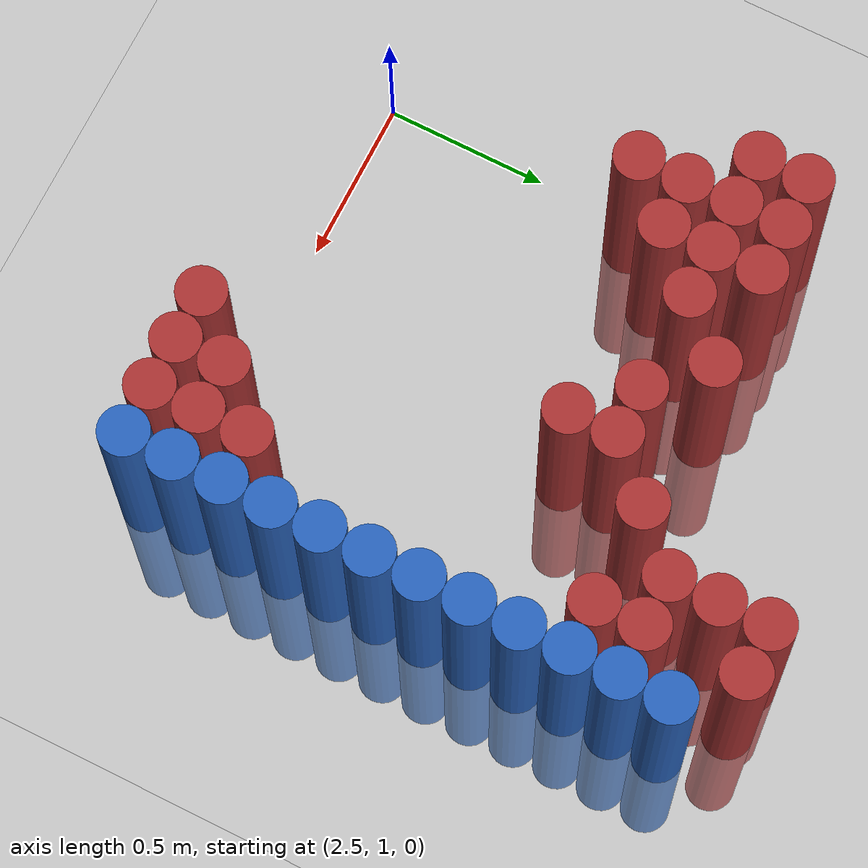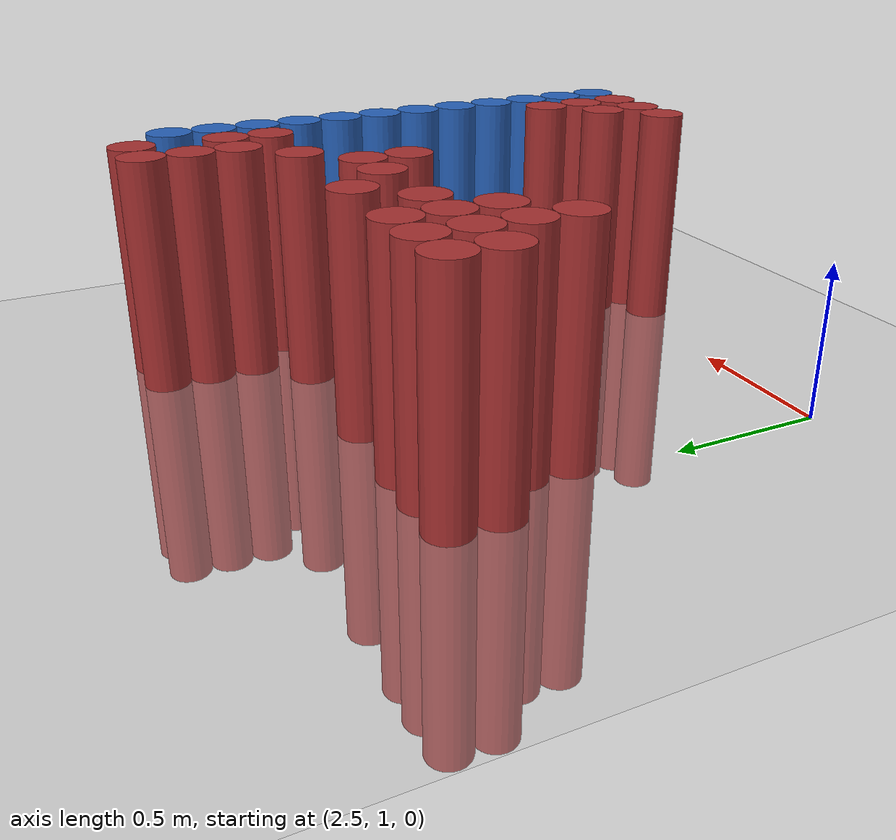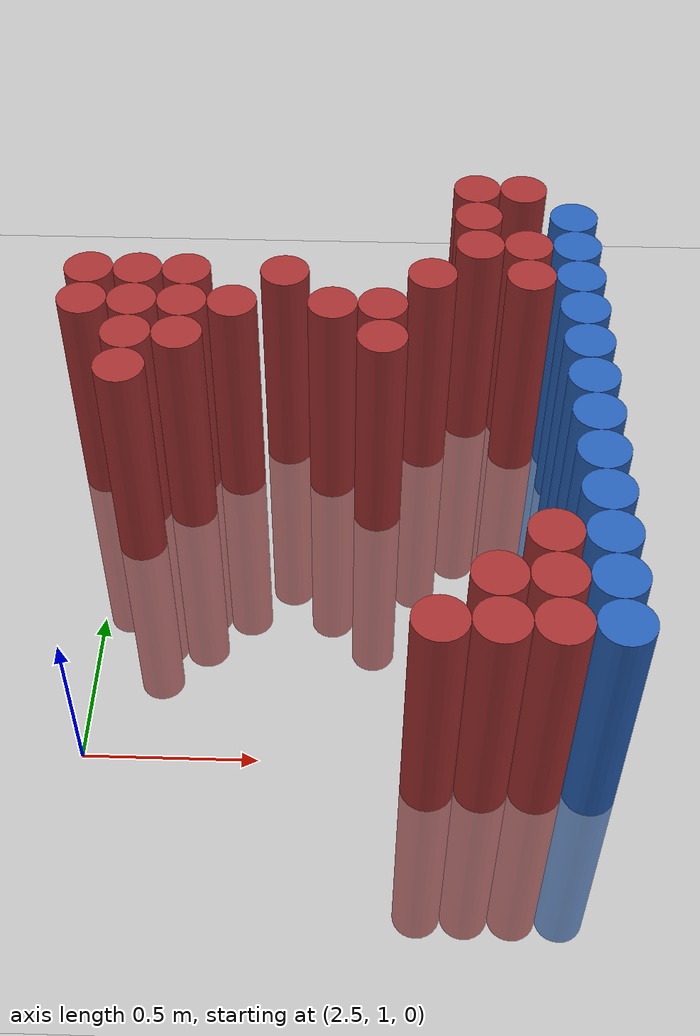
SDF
<sdf version="1.6">
 <world name="default">
  <model name="ground_plane">
   <static>1</static>
   <link name="link">
    <collision name="collision">
     <geometry><plane><normal>0 0 1</normal><size>100 100</size></plane></geometry>
     <surface><friction><ode><mu>100</mu><mu2>50</mu2></ode></friction></surface>
    </collision>
    <visual name="visual">
     <cast_shadows>0</cast_shadows>
     <geometry><plane><normal>0 0 1</normal><size>100 100</size></plane></geometry>
     <material>
      <script><uri>file://media/materials/scripts/gazebo.material</uri><name>Gazebo/Grey</name></script>
     </material>
    </visual>
   </link>
  </model>
  <model name="unit_cylinder_126">
   <static>1</static>
   <pose>3.925000 0.925000 0.000000 0.000000 0.000000 0.000000</pose>
   <link name="link">
    <inertial>
     <mass>1</mass>
     <inertia><ixx>0.145833</ixx><ixy>0</ixy><ixz>0</ixz><iyy>0.145833</iyy><iyz>0</iyz><izz>0.125</izz></inertia>
    </inertial>
    <collision name="collision">
     <geometry><cylinder><radius>0.075000</radius><length>1.5</length></cylinder></geometry>
    </collision>
    <visual name="visual">
     <geometry><cylinder><radius>0.075000</radius><length>1.5</length></cylinder></geometry>
     <material>
      <ambient>0.152000 0.379000 0.720000 1</ambient>
      <diffuse>0.152000 0.379000 0.720000 1</diffuse>
     </material>
     <material>
      <script><name>Gazebo/Grey</name><uri>file://media/materials/scripts/gazebo.material</uri></script>
     </material>
    </visual>
   </link>
  </model>
  <model name="unit_cylinder_128">
   <static>1</static>
   <pose>3.925000 1.075000 0.000000 0.000000 0.000000 0.000000</pose>
   <link name="link">
    <inertial>
     <mass>1</mass>
     <inertia><ixx>0.145833</ixx><ixy>0</ixy><ixz>0</ixz><iyy>0.145833</iyy><iyz>0</iyz><izz>0.125</izz></inertia>
    </inertial>
    <collision name="collision">
     <geometry><cylinder><radius>0.075000</radius><length>1.5</length></cylinder></geometry>
    </collision>
    <visual name="visual">
     <geometry><cylinder><radius>0.075000</radius><length>1.5</length></cylinder></geometry>
     <material>
      <ambient>0.152000 0.379000 0.720000 1</ambient>
      <diffuse>0.152000 0.379000 0.720000 1</diffuse>
     </material>
     <material>
      <script><name>Gazebo/Grey</name><uri>file://media/materials/scripts/gazebo.material</uri></script>
     </material>
    </visual>
   </link>
  </model>
  <model name="unit_cylinder_130">
   <static>1</static>
   <pose>3.925000 1.225000 0.000000 0.000000 0.000000 0.000000</pose>
   <link name="link">
    <inertial>
     <mass>1</mass>
     <inertia><ixx>0.145833</ixx><ixy>0</ixy><ixz>0</ixz><iyy>0.145833</iyy><iyz>0</iyz><izz>0.125</izz></inertia>
    </inertial>
    <collision name="collision">
     <geometry><cylinder><radius>0.075000</radius><length>1.5</length></cylinder></geometry>
    </collision>
    <visual name="visual">
     <geometry><cylinder><radius>0.075000</radius><length>1.5</length></cylinder></geometry>
     <material>
      <ambient>0.152000 0.379000 0.720000 1</ambient>
      <diffuse>0.152000 0.379000 0.720000 1</diffuse>
     </material>
     <material>
      <script><name>Gazebo/Grey</name><uri>file://media/materials/scripts/gazebo.material</uri></script>
     </material>
    </visual>
   </link>
  </model>
  <model name="unit_cylinder_132">
   <static>1</static>
   <pose>3.925000 1.375000 0.000000 0.000000 0.000000 0.000000</pose>
   <link name="link">
    <inertial>
     <mass>1</mass>
     <inertia><ixx>0.145833</ixx><ixy>0</ixy><ixz>0</ixz><iyy>0.145833</iyy><iyz>0</iyz><izz>0.125</izz></inertia>
    </inertial>
    <collision name="collision">
     <geometry><cylinder><radius>0.075000</radius><length>1.5</length></cylinder></geometry>
    </collision>
    <visual name="visual">
     <geometry><cylinder><radius>0.075000</radius><length>1.5</length></cylinder></geometry>
     <material>
      <ambient>0.152000 0.379000 0.720000 1</ambient>
      <diffuse>0.152000 0.379000 0.720000 1</diffuse>
     </material>
     <material>
      <script><name>Gazebo/Grey</name><uri>file://media/materials/scripts/gazebo.material</uri></script>
     </material>
    </visual>
   </link>
  </model>
  <model name="unit_cylinder_134">
   <static>1</static>
   <pose>3.925000 1.525000 0.000000 0.000000 0.000000 0.000000</pose>
   <link name="link">
    <inertial>
     <mass>1</mass>
     <inertia><ixx>0.145833</ixx><ixy>0</ixy><ixz>0</ixz><iyy>0.145833</iyy><iyz>0</iyz><izz>0.125</izz></inertia>
    </inertial>
    <collision name="collision">
     <geometry><cylinder><radius>0.075000</radius><length>1.5</length></cylinder></geometry>
    </collision>
    <visual name="visual">
     <geometry><cylinder><radius>0.075000</radius><length>1.5</length></cylinder></geometry>
     <material>
      <ambient>0.152000 0.379000 0.720000 1</ambient>
      <diffuse>0.152000 0.379000 0.720000 1</diffuse>
     </material>
     <material>
      <script><name>Gazebo/Grey</name><uri>file://media/materials/scripts/gazebo.material</uri></script>
     </material>
    </visual>
   </link>
  </model>
  <model name="unit_cylinder_136">
   <static>1</static>
   <pose>3.925000 1.675000 0.000000 0.000000 0.000000 0.000000</pose>
   <link name="link">
    <inertial>
     <mass>1</mass>
     <inertia><ixx>0.145833</ixx><ixy>0</ixy><ixz>0</ixz><iyy>0.145833</iyy><iyz>0</iyz><izz>0.125</izz></inertia>
    </inertial>
    <collision name="collision">
     <geometry><cylinder><radius>0.075000</radius><length>1.5</length></cylinder></geometry>
    </collision>
    <visual name="visual">
     <geometry><cylinder><radius>0.075000</radius><length>1.5</length></cylinder></geometry>
     <material>
      <ambient>0.152000 0.379000 0.720000 1</ambient>
      <diffuse>0.152000 0.379000 0.720000 1</diffuse>
     </material>
     <material>
      <script><name>Gazebo/Grey</name><uri>file://media/materials/scripts/gazebo.material</uri></script>
     </material>
    </visual>
   </link>
  </model>
  <model name="unit_cylinder_138">
   <static>1</static>
   <pose>3.925000 1.825000 0.000000 0.000000 0.000000 0.000000</pose>
   <link name="link">
    <inertial>
     <mass>1</mass>
     <inertia><ixx>0.145833</ixx><ixy>0</ixy><ixz>0</ixz><iyy>0.145833</iyy><iyz>0</iyz><izz>0.125</izz></inertia>
    </inertial>
    <collision name="collision">
     <geometry><cylinder><radius>0.075000</radius><length>1.5</length></cylinder></geometry>
    </collision>
    <visual name="visual">
     <geometry><cylinder><radius>0.075000</radius><length>1.5</length></cylinder></geometry>
     <material>
      <ambient>0.152000 0.379000 0.720000 1</ambient>
      <diffuse>0.152000 0.379000 0.720000 1</diffuse>
     </material>
     <material>
      <script><name>Gazebo/Grey</name><uri>file://media/materials/scripts/gazebo.material</uri></script>
     </material>
    </visual>
   </link>
  </model>
  <model name="unit_cylinder_140">
   <static>1</static>
   <pose>3.925000 1.975000 0.000000 0.000000 0.000000 0.000000</pose>
   <link name="link">
    <inertial>
     <mass>1</mass>
     <inertia><ixx>0.145833</ixx><ixy>0</ixy><ixz>0</ixz><iyy>0.145833</iyy><iyz>0</iyz><izz>0.125</izz></inertia>
    </inertial>
    <collision name="collision">
     <geometry><cylinder><radius>0.075000</radius><length>1.5</length></cylinder></geometry>
    </collision>
    <visual name="visual">
     <geometry><cylinder><radius>0.075000</radius><length>1.5</length></cylinder></geometry>
     <material>
      <ambient>0.152000 0.379000 0.720000 1</ambient>
      <diffuse>0.152000 0.379000 0.720000 1</diffuse>
     </material>
     <material>
      <script><name>Gazebo/Grey</name><uri>file://media/materials/scripts/gazebo.material</uri></script>
     </material>
    </visual>
   </link>
  </model>
  <model name="unit_cylinder_142">
   <static>1</static>
   <pose>3.925000 2.125000 0.000000 0.000000 0.000000 0.000000</pose>
   <link name="link">
    <inertial>
     <mass>1</mass>
     <inertia><ixx>0.145833</ixx><ixy>0</ixy><ixz>0</ixz><iyy>0.145833</iyy><iyz>0</iyz><izz>0.125</izz></inertia>
    </inertial>
    <collision name="collision">
     <geometry><cylinder><radius>0.075000</radius><length>1.5</length></cylinder></geometry>
    </collision>
    <visual name="visual">
     <geometry><cylinder><radius>0.075000</radius><length>1.5</length></cylinder></geometry>
     <material>
      <ambient>0.152000 0.379000 0.720000 1</ambient>
      <diffuse>0.152000 0.379000 0.720000 1</diffuse>
     </material>
     <material>
      <script><name>Gazebo/Grey</name><uri>file://media/materials/scripts/gazebo.material</uri></script>
     </material>
    </visual>
   </link>
  </model>
  <model name="unit_cylinder_144">
   <static>1</static>
   <pose>3.925000 2.275000 0.000000 0.000000 0.000000 0.000000</pose>
   <link name="link">
    <inertial>
     <mass>1</mass>
     <inertia><ixx>0.145833</ixx><ixy>0</ixy><ixz>0</ixz><iyy>0.145833</iyy><iyz>0</iyz><izz>0.125</izz></inertia>
    </inertial>
    <collision name="collision">
     <geometry><cylinder><radius>0.075000</radius><length>1.5</length></cylinder></geometry>
    </collision>
    <visual name="visual">
     <geometry><cylinder><radius>0.075000</radius><length>1.5</length></cylinder></geometry>
     <material>
      <ambient>0.152000 0.379000 0.720000 1</ambient>
      <diffuse>0.152000 0.379000 0.720000 1</diffuse>
     </material>
     <material>
      <script><name>Gazebo/Grey</name><uri>file://media/materials/scripts/gazebo.material</uri></script>
     </material>
    </visual>
   </link>
  </model>
  <model name="unit_cylinder_146">
   <static>1</static>
   <pose>3.925000 2.425000 0.000000 0.000000 0.000000 0.000000</pose>
   <link name="link">
    <inertial>
     <mass>1</mass>
     <inertia><ixx>0.145833</ixx><ixy>0</ixy><ixz>0</ixz><iyy>0.145833</iyy><iyz>0</iyz><izz>0.125</izz></inertia>
    </inertial>
    <collision name="collision">
     <geometry><cylinder><radius>0.075000</radius><length>1.5</length></cylinder></geometry>
    </collision>
    <visual name="visual">
     <geometry><cylinder><radius>0.075000</radius><length>1.5</length></cylinder></geometry>
     <material>
      <ambient>0.152000 0.379000 0.720000 1</ambient>
      <diffuse>0.152000 0.379000 0.720000 1</diffuse>
     </material>
     <material>
      <script><name>Gazebo/Grey</name><uri>file://media/materials/scripts/gazebo.material</uri></script>
     </material>
    </visual>
   </link>
  </model>
  <model name="unit_cylinder_148">
   <static>1</static>
   <pose>3.925000 2.575000 0.000000 0.000000 0.000000 0.000000</pose>
   <link name="link">
    <inertial>
     <mass>1</mass>
     <inertia><ixx>0.145833</ixx><ixy>0</ixy><ixz>0</ixz><iyy>0.145833</iyy><iyz>0</iyz><izz>0.125</izz></inertia>
    </inertial>
    <collision name="collision">
     <geometry><cylinder><radius>0.075000</radius><length>1.5</length></cylinder></geometry>
    </collision>
    <visual name="visual">
     <geometry><cylinder><radius>0.075000</radius><length>1.5</length></cylinder></geometry>
     <material>
      <ambient>0.152000 0.379000 0.720000 1</ambient>
      <diffuse>0.152000 0.379000 0.720000 1</diffuse>
     </material>
     <material>
      <script><name>Gazebo/Grey</name><uri>file://media/materials/scripts/gazebo.material</uri></script>
     </material>
    </visual>
   </link>
  </model>
  <model name="unit_cylinder_390">
   <static>1</static>
   <pose>2.425000 2.125000 0.000000 0.000000 0.000000 0.000000</pose>
   <link name="link">
    <inertial>
     <mass>1</mass>
     <inertia><ixx>0.145833</ixx><ixy>0</ixy><ixz>0</ixz><iyy>0.145833</iyy><iyz>0</iyz><izz>0.125</izz></inertia>
    </inertial>
    <collision name="collision">
     <geometry><cylinder><radius>0.075000</radius><length>1.5</length></cylinder></geometry>
    </collision>
    <visual name="visual">
     <geometry><cylinder><radius>0.075000</radius><length>1.5</length></cylinder></geometry>
     <material>
      <ambient>0.648000 0.192000 0.192000 1</ambient>
      <diffuse>0.648000 0.192000 0.192000 1</diffuse>
     </material>
     <material>
      <script><name>Gazebo/Grey</name><uri>file://media/materials/scripts/gazebo.material</uri></script>
     </material>
    </visual>
   </link>
  </model>
  <model name="unit_cylinder_391">
   <static>1</static>
   <pose>2.425000 2.275000 0.000000 0.000000 0.000000 0.000000</pose>
   <link name="link">
    <inertial>
     <mass>1</mass>
     <inertia><ixx>0.145833</ixx><ixy>0</ixy><ixz>0</ixz><iyy>0.145833</iyy><iyz>0</iyz><izz>0.125</izz></inertia>
    </inertial>
    <collision name="collision">
     <geometry><cylinder><radius>0.075000</radius><length>1.5</length></cylinder></geometry>
    </collision>
    <visual name="visual">
     <geometry><cylinder><radius>0.075000</radius><length>1.5</length></cylinder></geometry>
     <material>
      <ambient>0.648000 0.192000 0.192000 1</ambient>
      <diffuse>0.648000 0.192000 0.192000 1</diffuse>
     </material>
     <material>
      <script><name>Gazebo/Grey</name><uri>file://media/materials/scripts/gazebo.material</uri></script>
     </material>
    </visual>
   </link>
  </model>
  <model name="unit_cylinder_395">
   <static>1</static>
   <pose>2.575000 1.825000 0.000000 0.000000 0.000000 0.000000</pose>
   <link name="link">
    <inertial>
     <mass>1</mass>
     <inertia><ixx>0.145833</ixx><ixy>0</ixy><ixz>0</ixz><iyy>0.145833</iyy><iyz>0</iyz><izz>0.125</izz></inertia>
    </inertial>
    <collision name="collision">
     <geometry><cylinder><radius>0.075000</radius><length>1.5</length></cylinder></geometry>
    </collision>
    <visual name="visual">
     <geometry><cylinder><radius>0.075000</radius><length>1.5</length></cylinder></geometry>
     <material>
      <ambient>0.648000 0.192000 0.192000 1</ambient>
      <diffuse>0.648000 0.192000 0.192000 1</diffuse>
     </material>
     <material>
      <script><name>Gazebo/Grey</name><uri>file://media/materials/scripts/gazebo.material</uri></script>
     </material>
    </visual>
   </link>
  </model>
  <model name="unit_cylinder_396">
   <static>1</static>
   <pose>2.575000 1.975000 0.000000 0.000000 0.000000 0.000000</pose>
   <link name="link">
    <inertial>
     <mass>1</mass>
     <inertia><ixx>0.145833</ixx><ixy>0</ixy><ixz>0</ixz><iyy>0.145833</iyy><iyz>0</iyz><izz>0.125</izz></inertia>
    </inertial>
    <collision name="collision">
     <geometry><cylinder><radius>0.075000</radius><length>1.5</length></cylinder></geometry>
    </collision>
    <visual name="visual">
     <geometry><cylinder><radius>0.075000</radius><length>1.5</length></cylinder></geometry>
     <material>
      <ambient>0.648000 0.192000 0.192000 1</ambient>
      <diffuse>0.648000 0.192000 0.192000 1</diffuse>
     </material>
     <material>
      <script><name>Gazebo/Grey</name><uri>file://media/materials/scripts/gazebo.material</uri></script>
     </material>
    </visual>
   </link>
  </model>
  <model name="unit_cylinder_397">
   <static>1</static>
   <pose>2.575000 2.125000 0.000000 0.000000 0.000000 0.000000</pose>
   <link name="link">
    <inertial>
     <mass>1</mass>
     <inertia><ixx>0.145833</ixx><ixy>0</ixy><ixz>0</ixz><iyy>0.145833</iyy><iyz>0</iyz><izz>0.125</izz></inertia>
    </inertial>
    <collision name="collision">
     <geometry><cylinder><radius>0.075000</radius><length>1.5</length></cylinder></geometry>
    </collision>
    <visual name="visual">
     <geometry><cylinder><radius>0.075000</radius><length>1.5</length></cylinder></geometry>
     <material>
      <ambient>0.648000 0.192000 0.192000 1</ambient>
      <diffuse>0.648000 0.192000 0.192000 1</diffuse>
     </material>
     <material>
      <script><name>Gazebo/Grey</name><uri>file://media/materials/scripts/gazebo.material</uri></script>
     </material>
    </visual>
   </link>
  </model>
  <model name="unit_cylinder_398">
   <static>1</static>
   <pose>2.575000 2.275000 0.000000 0.000000 0.000000 0.000000</pose>
   <link name="link">
    <inertial>
     <mass>1</mass>
     <inertia><ixx>0.145833</ixx><ixy>0</ixy><ixz>0</ixz><iyy>0.145833</iyy><iyz>0</iyz><izz>0.125</izz></inertia>
    </inertial>
    <collision name="collision">
     <geometry><cylinder><radius>0.075000</radius><length>1.5</length></cylinder></geometry>
    </collision>
    <visual name="visual">
     <geometry><cylinder><radius>0.075000</radius><length>1.5</length></cylinder></geometry>
     <material>
      <ambient>0.648000 0.192000 0.192000 1</ambient>
      <diffuse>0.648000 0.192000 0.192000 1</diffuse>
     </material>
     <material>
      <script><name>Gazebo/Grey</name><uri>file://media/materials/scripts/gazebo.material</uri></script>
     </material>
    </visual>
   </link>
  </model>
  <model name="unit_cylinder_404">
   <static>1</static>
   <pose>2.725000 1.975000 0.000000 0.000000 0.000000 0.000000</pose>
   <link name="link">
    <inertial>
     <mass>1</mass>
     <inertia><ixx>0.145833</ixx><ixy>0</ixy><ixz>0</ixz><iyy>0.145833</iyy><iyz>0</iyz><izz>0.125</izz></inertia>
    </inertial>
    <collision name="collision">
     <geometry><cylinder><radius>0.075000</radius><length>1.5</length></cylinder></geometry>
    </collision>
    <visual name="visual">
     <geometry><cylinder><radius>0.075000</radius><length>1.5</length></cylinder></geometry>
     <material>
      <ambient>0.648000 0.192000 0.192000 1</ambient>
      <diffuse>0.648000 0.192000 0.192000 1</diffuse>
     </material>
     <material>
      <script><name>Gazebo/Grey</name><uri>file://media/materials/scripts/gazebo.material</uri></script>
     </material>
    </visual>
   </link>
  </model>
  <model name="unit_cylinder_405">
   <static>1</static>
   <pose>2.725000 2.125000 0.000000 0.000000 0.000000 0.000000</pose>
   <link name="link">
    <inertial>
     <mass>1</mass>
     <inertia><ixx>0.145833</ixx><ixy>0</ixy><ixz>0</ixz><iyy>0.145833</iyy><iyz>0</iyz><izz>0.125</izz></inertia>
    </inertial>
    <collision name="collision">
     <geometry><cylinder><radius>0.075000</radius><length>1.5</length></cylinder></geometry>
    </collision>
    <visual name="visual">
     <geometry><cylinder><radius>0.075000</radius><length>1.5</length></cylinder></geometry>
     <material>
      <ambient>0.648000 0.192000 0.192000 1</ambient>
      <diffuse>0.648000 0.192000 0.192000 1</diffuse>
     </material>
     <material>
      <script><name>Gazebo/Grey</name><uri>file://media/materials/scripts/gazebo.material</uri></script>
     </material>
    </visual>
   </link>
  </model>
  <model name="unit_cylinder_406">
   <static>1</static>
   <pose>2.725000 2.275000 0.000000 0.000000 0.000000 0.000000</pose>
   <link name="link">
    <inertial>
     <mass>1</mass>
     <inertia><ixx>0.145833</ixx><ixy>0</ixy><ixz>0</ixz><iyy>0.145833</iyy><iyz>0</iyz><izz>0.125</izz></inertia>
    </inertial>
    <collision name="collision">
     <geometry><cylinder><radius>0.075000</radius><length>1.5</length></cylinder></geometry>
    </collision>
    <visual name="visual">
     <geometry><cylinder><radius>0.075000</radius><length>1.5</length></cylinder></geometry>
     <material>
      <ambient>0.648000 0.192000 0.192000 1</ambient>
      <diffuse>0.648000 0.192000 0.192000 1</diffuse>
     </material>
     <material>
      <script><name>Gazebo/Grey</name><uri>file://media/materials/scripts/gazebo.material</uri></script>
     </material>
    </visual>
   </link>
  </model>
  <model name="unit_cylinder_410">
   <static>1</static>
   <pose>2.875000 2.125000 0.000000 0.000000 0.000000 0.000000</pose>
   <link name="link">
    <inertial>
     <mass>1</mass>
     <inertia><ixx>0.145833</ixx><ixy>0</ixy><ixz>0</ixz><iyy>0.145833</iyy><iyz>0</iyz><izz>0.125</izz></inertia>
    </inertial>
    <collision name="collision">
     <geometry><cylinder><radius>0.075000</radius><length>1.5</length></cylinder></geometry>
    </collision>
    <visual name="visual">
     <geometry><cylinder><radius>0.075000</radius><length>1.5</length></cylinder></geometry>
     <material>
      <ambient>0.648000 0.192000 0.192000 1</ambient>
      <diffuse>0.648000 0.192000 0.192000 1</diffuse>
     </material>
     <material>
      <script><name>Gazebo/Grey</name><uri>file://media/materials/scripts/gazebo.material</uri></script>
     </material>
    </visual>
   </link>
  </model>
  <model name="unit_cylinder_412">
   <static>1</static>
   <pose>3.025000 2.275000 0.000000 0.000000 0.000000 0.000000</pose>
   <link name="link">
    <inertial>
     <mass>1</mass>
     <inertia><ixx>0.145833</ixx><ixy>0</ixy><ixz>0</ixz><iyy>0.145833</iyy><iyz>0</iyz><izz>0.125</izz></inertia>
    </inertial>
    <collision name="collision">
     <geometry><cylinder><radius>0.075000</radius><length>1.5</length></cylinder></geometry>
    </collision>
    <visual name="visual">
     <geometry><cylinder><radius>0.075000</radius><length>1.5</length></cylinder></geometry>
     <material>
      <ambient>0.648000 0.192000 0.192000 1</ambient>
      <diffuse>0.648000 0.192000 0.192000 1</diffuse>
     </material>
     <material>
      <script><name>Gazebo/Grey</name><uri>file://media/materials/scripts/gazebo.material</uri></script>
     </material>
    </visual>
   </link>
  </model>
  <model name="unit_cylinder_419">
   <static>1</static>
   <pose>3.175000 2.125000 0.000000 0.000000 0.000000 0.000000</pose>
   <link name="link">
    <inertial>
     <mass>1</mass>
     <inertia><ixx>0.145833</ixx><ixy>0</ixy><ixz>0</ixz><iyy>0.145833</iyy><iyz>0</iyz><izz>0.125</izz></inertia>
    </inertial>
    <collision name="collision">
     <geometry><cylinder><radius>0.075000</radius><length>1.5</length></cylinder></geometry>
    </collision>
    <visual name="visual">
     <geometry><cylinder><radius>0.075000</radius><length>1.5</length></cylinder></geometry>
     <material>
      <ambient>0.648000 0.192000 0.192000 1</ambient>
      <diffuse>0.648000 0.192000 0.192000 1</diffuse>
     </material>
     <material>
      <script><name>Gazebo/Grey</name><uri>file://media/materials/scripts/gazebo.material</uri></script>
     </material>
    </visual>
   </link>
  </model>
  <model name="unit_cylinder_426">
   <static>1</static>
   <pose>3.325000 1.975000 0.000000 0.000000 0.000000 0.000000</pose>
   <link name="link">
    <inertial>
     <mass>1</mass>
     <inertia><ixx>0.145833</ixx><ixy>0</ixy><ixz>0</ixz><iyy>0.145833</iyy><iyz>0</iyz><izz>0.125</izz></inertia>
    </inertial>
    <collision name="collision">
     <geometry><cylinder><radius>0.075000</radius><length>1.5</length></cylinder></geometry>
    </collision>
    <visual name="visual">
     <geometry><cylinder><radius>0.075000</radius><length>1.5</length></cylinder></geometry>
     <material>
      <ambient>0.648000 0.192000 0.192000 1</ambient>
      <diffuse>0.648000 0.192000 0.192000 1</diffuse>
     </material>
     <material>
      <script><name>Gazebo/Grey</name><uri>file://media/materials/scripts/gazebo.material</uri></script>
     </material>
    </visual>
   </link>
  </model>
  <model name="unit_cylinder_427">
   <static>1</static>
   <pose>3.325000 2.125000 0.000000 0.000000 0.000000 0.000000</pose>
   <link name="link">
    <inertial>
     <mass>1</mass>
     <inertia><ixx>0.145833</ixx><ixy>0</ixy><ixz>0</ixz><iyy>0.145833</iyy><iyz>0</iyz><izz>0.125</izz></inertia>
    </inertial>
    <collision name="collision">
     <geometry><cylinder><radius>0.075000</radius><length>1.5</length></cylinder></geometry>
    </collision>
    <visual name="visual">
     <geometry><cylinder><radius>0.075000</radius><length>1.5</length></cylinder></geometry>
     <material>
      <ambient>0.648000 0.192000 0.192000 1</ambient>
      <diffuse>0.648000 0.192000 0.192000 1</diffuse>
     </material>
     <material>
      <script><name>Gazebo/Grey</name><uri>file://media/materials/scripts/gazebo.material</uri></script>
     </material>
    </visual>
   </link>
  </model>
  <model name="unit_cylinder_430">
   <static>1</static>
   <pose>3.475000 0.925000 0.000000 0.000000 0.000000 0.000000</pose>
   <link name="link">
    <inertial>
     <mass>1</mass>
     <inertia><ixx>0.145833</ixx><ixy>0</ixy><ixz>0</ixz><iyy>0.145833</iyy><iyz>0</iyz><izz>0.125</izz></inertia>
    </inertial>
    <collision name="collision">
     <geometry><cylinder><radius>0.075000</radius><length>1.5</length></cylinder></geometry>
    </collision>
    <visual name="visual">
     <geometry><cylinder><radius>0.075000</radius><length>1.5</length></cylinder></geometry>
     <material>
      <ambient>0.648000 0.192000 0.192000 1</ambient>
      <diffuse>0.648000 0.192000 0.192000 1</diffuse>
     </material>
     <material>
      <script><name>Gazebo/Grey</name><uri>file://media/materials/scripts/gazebo.material</uri></script>
     </material>
    </visual>
   </link>
  </model>
  <model name="unit_cylinder_431">
   <static>1</static>
   <pose>3.475000 2.275000 0.000000 0.000000 0.000000 0.000000</pose>
   <link name="link">
    <inertial>
     <mass>1</mass>
     <inertia><ixx>0.145833</ixx><ixy>0</ixy><ixz>0</ixz><iyy>0.145833</iyy><iyz>0</iyz><izz>0.125</izz></inertia>
    </inertial>
    <collision name="collision">
     <geometry><cylinder><radius>0.075000</radius><length>1.5</length></cylinder></geometry>
    </collision>
    <visual name="visual">
     <geometry><cylinder><radius>0.075000</radius><length>1.5</length></cylinder></geometry>
     <material>
      <ambient>0.648000 0.192000 0.192000 1</ambient>
      <diffuse>0.648000 0.192000 0.192000 1</diffuse>
     </material>
     <material>
      <script><name>Gazebo/Grey</name><uri>file://media/materials/scripts/gazebo.material</uri></script>
     </material>
    </visual>
   </link>
  </model>
  <model name="unit_cylinder_434">
   <static>1</static>
   <pose>3.625000 0.925000 0.000000 0.000000 0.000000 0.000000</pose>
   <link name="link">
    <inertial>
     <mass>1</mass>
     <inertia><ixx>0.145833</ixx><ixy>0</ixy><ixz>0</ixz><iyy>0.145833</iyy><iyz>0</iyz><izz>0.125</izz></inertia>
    </inertial>
    <collision name="collision">
     <geometry><cylinder><radius>0.075000</radius><length>1.5</length></cylinder></geometry>
    </collision>
    <visual name="visual">
     <geometry><cylinder><radius>0.075000</radius><length>1.5</length></cylinder></geometry>
     <material>
      <ambient>0.648000 0.192000 0.192000 1</ambient>
      <diffuse>0.648000 0.192000 0.192000 1</diffuse>
     </material>
     <material>
      <script><name>Gazebo/Grey</name><uri>file://media/materials/scripts/gazebo.material</uri></script>
     </material>
    </visual>
   </link>
  </model>
  <model name="unit_cylinder_435">
   <static>1</static>
   <pose>3.625000 1.075000 0.000000 0.000000 0.000000 0.000000</pose>
   <link name="link">
    <inertial>
     <mass>1</mass>
     <inertia><ixx>0.145833</ixx><ixy>0</ixy><ixz>0</ixz><iyy>0.145833</iyy><iyz>0</iyz><izz>0.125</izz></inertia>
    </inertial>
    <collision name="collision">
     <geometry><cylinder><radius>0.075000</radius><length>1.5</length></cylinder></geometry>
    </collision>
    <visual name="visual">
     <geometry><cylinder><radius>0.075000</radius><length>1.5</length></cylinder></geometry>
     <material>
      <ambient>0.648000 0.192000 0.192000 1</ambient>
      <diffuse>0.648000 0.192000 0.192000 1</diffuse>
     </material>
     <material>
      <script><name>Gazebo/Grey</name><uri>file://media/materials/scripts/gazebo.material</uri></script>
     </material>
    </visual>
   </link>
  </model>
  <model name="unit_cylinder_436">
   <static>1</static>
   <pose>3.625000 2.425000 0.000000 0.000000 0.000000 0.000000</pose>
   <link name="link">
    <inertial>
     <mass>1</mass>
     <inertia><ixx>0.145833</ixx><ixy>0</ixy><ixz>0</ixz><iyy>0.145833</iyy><iyz>0</iyz><izz>0.125</izz></inertia>
    </inertial>
    <collision name="collision">
     <geometry><cylinder><radius>0.075000</radius><length>1.5</length></cylinder></geometry>
    </collision>
    <visual name="visual">
     <geometry><cylinder><radius>0.075000</radius><length>1.5</length></cylinder></geometry>
     <material>
      <ambient>0.648000 0.192000 0.192000 1</ambient>
      <diffuse>0.648000 0.192000 0.192000 1</diffuse>
     </material>
     <material>
      <script><name>Gazebo/Grey</name><uri>file://media/materials/scripts/gazebo.material</uri></script>
     </material>
    </visual>
   </link>
  </model>
  <model name="unit_cylinder_437">
   <static>1</static>
   <pose>3.625000 2.575000 0.000000 0.000000 0.000000 0.000000</pose>
   <link name="link">
    <inertial>
     <mass>1</mass>
     <inertia><ixx>0.145833</ixx><ixy>0</ixy><ixz>0</ixz><iyy>0.145833</iyy><iyz>0</iyz><izz>0.125</izz></inertia>
    </inertial>
    <collision name="collision">
     <geometry><cylinder><radius>0.075000</radius><length>1.5</length></cylinder></geometry>
    </collision>
    <visual name="visual">
     <geometry><cylinder><radius>0.075000</radius><length>1.5</length></cylinder></geometry>
     <material>
      <ambient>0.648000 0.192000 0.192000 1</ambient>
      <diffuse>0.648000 0.192000 0.192000 1</diffuse>
     </material>
     <material>
      <script><name>Gazebo/Grey</name><uri>file://media/materials/scripts/gazebo.material</uri></script>
     </material>
    </visual>
   </link>
  </model>
  <model name="unit_cylinder_438">
   <static>1</static>
   <pose>3.625000 2.725000 0.000000 0.000000 0.000000 0.000000</pose>
   <link name="link">
    <inertial>
     <mass>1</mass>
     <inertia><ixx>0.145833</ixx><ixy>0</ixy><ixz>0</ixz><iyy>0.145833</iyy><iyz>0</iyz><izz>0.125</izz></inertia>
    </inertial>
    <collision name="collision">
     <geometry><cylinder><radius>0.075000</radius><length>1.5</length></cylinder></geometry>
    </collision>
    <visual name="visual">
     <geometry><cylinder><radius>0.075000</radius><length>1.5</length></cylinder></geometry>
     <material>
      <ambient>0.648000 0.192000 0.192000 1</ambient>
      <diffuse>0.648000 0.192000 0.192000 1</diffuse>
     </material>
     <material>
      <script><name>Gazebo/Grey</name><uri>file://media/materials/scripts/gazebo.material</uri></script>
     </material>
    </visual>
   </link>
  </model>
  <model name="unit_cylinder_447">
   <static>1</static>
   <pose>3.775000 0.925000 0.000000 0.000000 0.000000 0.000000</pose>
   <link name="link">
    <inertial>
     <mass>1</mass>
     <inertia><ixx>0.145833</ixx><ixy>0</ixy><ixz>0</ixz><iyy>0.145833</iyy><iyz>0</iyz><izz>0.125</izz></inertia>
    </inertial>
    <collision name="collision">
     <geometry><cylinder><radius>0.075000</radius><length>1.5</length></cylinder></geometry>
    </collision>
    <visual name="visual">
     <geometry><cylinder><radius>0.075000</radius><length>1.5</length></cylinder></geometry>
     <material>
      <ambient>0.648000 0.192000 0.192000 1</ambient>
      <diffuse>0.648000 0.192000 0.192000 1</diffuse>
     </material>
     <material>
      <script><name>Gazebo/Grey</name><uri>file://media/materials/scripts/gazebo.material</uri></script>
     </material>
    </visual>
   </link>
  </model>
  <model name="unit_cylinder_448">
   <static>1</static>
   <pose>3.775000 1.075000 0.000000 0.000000 0.000000 0.000000</pose>
   <link name="link">
    <inertial>
     <mass>1</mass>
     <inertia><ixx>0.145833</ixx><ixy>0</ixy><ixz>0</ixz><iyy>0.145833</iyy><iyz>0</iyz><izz>0.125</izz></inertia>
    </inertial>
    <collision name="collision">
     <geometry><cylinder><radius>0.075000</radius><length>1.5</length></cylinder></geometry>
    </collision>
    <visual name="visual">
     <geometry><cylinder><radius>0.075000</radius><length>1.5</length></cylinder></geometry>
     <material>
      <ambient>0.648000 0.192000 0.192000 1</ambient>
      <diffuse>0.648000 0.192000 0.192000 1</diffuse>
     </material>
     <material>
      <script><name>Gazebo/Grey</name><uri>file://media/materials/scripts/gazebo.material</uri></script>
     </material>
    </visual>
   </link>
  </model>
  <model name="unit_cylinder_449">
   <static>1</static>
   <pose>3.775000 1.225000 0.000000 0.000000 0.000000 0.000000</pose>
   <link name="link">
    <inertial>
     <mass>1</mass>
     <inertia><ixx>0.145833</ixx><ixy>0</ixy><ixz>0</ixz><iyy>0.145833</iyy><iyz>0</iyz><izz>0.125</izz></inertia>
    </inertial>
    <collision name="collision">
     <geometry><cylinder><radius>0.075000</radius><length>1.5</length></cylinder></geometry>
    </collision>
    <visual name="visual">
     <geometry><cylinder><radius>0.075000</radius><length>1.5</length></cylinder></geometry>
     <material>
      <ambient>0.648000 0.192000 0.192000 1</ambient>
      <diffuse>0.648000 0.192000 0.192000 1</diffuse>
     </material>
     <material>
      <script><name>Gazebo/Grey</name><uri>file://media/materials/scripts/gazebo.material</uri></script>
     </material>
    </visual>
   </link>
  </model>
  <model name="unit_cylinder_450">
   <static>1</static>
   <pose>3.775000 2.275000 0.000000 0.000000 0.000000 0.000000</pose>
   <link name="link">
    <inertial>
     <mass>1</mass>
     <inertia><ixx>0.145833</ixx><ixy>0</ixy><ixz>0</ixz><iyy>0.145833</iyy><iyz>0</iyz><izz>0.125</izz></inertia>
    </inertial>
    <collision name="collision">
     <geometry><cylinder><radius>0.075000</radius><length>1.5</length></cylinder></geometry>
    </collision>
    <visual name="visual">
     <geometry><cylinder><radius>0.075000</radius><length>1.5</length></cylinder></geometry>
     <material>
      <ambient>0.648000 0.192000 0.192000 1</ambient>
      <diffuse>0.648000 0.192000 0.192000 1</diffuse>
     </material>
     <material>
      <script><name>Gazebo/Grey</name><uri>file://media/materials/scripts/gazebo.material</uri></script>
     </material>
    </visual>
   </link>
  </model>
  <model name="unit_cylinder_451">
   <static>1</static>
   <pose>3.775000 2.425000 0.000000 0.000000 0.000000 0.000000</pose>
   <link name="link">
    <inertial>
     <mass>1</mass>
     <inertia><ixx>0.145833</ixx><ixy>0</ixy><ixz>0</ixz><iyy>0.145833</iyy><iyz>0</iyz><izz>0.125</izz></inertia>
    </inertial>
    <collision name="collision">
     <geometry><cylinder><radius>0.075000</radius><length>1.5</length></cylinder></geometry>
    </collision>
    <visual name="visual">
     <geometry><cylinder><radius>0.075000</radius><length>1.5</length></cylinder></geometry>
     <material>
      <ambient>0.648000 0.192000 0.192000 1</ambient>
      <diffuse>0.648000 0.192000 0.192000 1</diffuse>
     </material>
     <material>
      <script><name>Gazebo/Grey</name><uri>file://media/materials/scripts/gazebo.material</uri></script>
     </material>
    </visual>
   </link>
  </model>
  <model name="unit_cylinder_452">
   <static>1</static>
   <pose>3.775000 2.725000 0.000000 0.000000 0.000000 0.000000</pose>
   <link name="link">
    <inertial>
     <mass>1</mass>
     <inertia><ixx>0.145833</ixx><ixy>0</ixy><ixz>0</ixz><iyy>0.145833</iyy><iyz>0</iyz><izz>0.125</izz></inertia>
    </inertial>
    <collision name="collision">
     <geometry><cylinder><radius>0.075000</radius><length>1.5</length></cylinder></geometry>
    </collision>
    <visual name="visual">
     <geometry><cylinder><radius>0.075000</radius><length>1.5</length></cylinder></geometry>
     <material>
      <ambient>0.648000 0.192000 0.192000 1</ambient>
      <diffuse>0.648000 0.192000 0.192000 1</diffuse>
     </material>
     <material>
      <script><name>Gazebo/Grey</name><uri>file://media/materials/scripts/gazebo.material</uri></script>
     </material>
    </visual>
   </link>
  </model>
  <model name="unit_cylinder_479">
   <static>1</static>
   <pose>3.925000 0.925000 0.000000 0.000000 0.000000 0.000000</pose>
   <link name="link">
    <inertial>
     <mass>1</mass>
     <inertia><ixx>0.145833</ixx><ixy>0</ixy><ixz>0</ixz><iyy>0.145833</iyy><iyz>0</iyz><izz>0.125</izz></inertia>
    </inertial>
    <collision name="collision">
     <geometry><cylinder><radius>0.075000</radius><length>1.5</length></cylinder></geometry>
    </collision>
    <visual name="visual">
     <geometry><cylinder><radius>0.075000</radius><length>1.5</length></cylinder></geometry>
     <material>
      <ambient>0.152000 0.379000 0.720000 1</ambient>
      <diffuse>0.152000 0.379000 0.720000 1</diffuse>
     </material>
     <material>
      <script><name>Gazebo/Grey</name><uri>file://media/materials/scripts/gazebo.material</uri></script>
     </material>
    </visual>
   </link>
  </model>
  <model name="unit_cylinder_480">
   <static>1</static>
   <pose>3.925000 1.075000 0.000000 0.000000 0.000000 0.000000</pose>
   <link name="link">
    <inertial>
     <mass>1</mass>
     <inertia><ixx>0.145833</ixx><ixy>0</ixy><ixz>0</ixz><iyy>0.145833</iyy><iyz>0</iyz><izz>0.125</izz></inertia>
    </inertial>
    <collision name="collision">
     <geometry><cylinder><radius>0.075000</radius><length>1.5</length></cylinder></geometry>
    </collision>
    <visual name="visual">
     <geometry><cylinder><radius>0.075000</radius><length>1.5</length></cylinder></geometry>
     <material>
      <ambient>0.152000 0.379000 0.720000 1</ambient>
      <diffuse>0.152000 0.379000 0.720000 1</diffuse>
     </material>
     <material>
      <script><name>Gazebo/Grey</name><uri>file://media/materials/scripts/gazebo.material</uri></script>
     </material>
    </visual>
   </link>
  </model>
  <model name="unit_cylinder_481">
   <static>1</static>
   <pose>3.925000 1.225000 0.000000 0.000000 0.000000 0.000000</pose>
   <link name="link">
    <inertial>
     <mass>1</mass>
     <inertia><ixx>0.145833</ixx><ixy>0</ixy><ixz>0</ixz><iyy>0.145833</iyy><iyz>0</iyz><izz>0.125</izz></inertia>
    </inertial>
    <collision name="collision">
     <geometry><cylinder><radius>0.075000</radius><length>1.5</length></cylinder></geometry>
    </collision>
    <visual name="visual">
     <geometry><cylinder><radius>0.075000</radius><length>1.5</length></cylinder></geometry>
     <material>
      <ambient>0.152000 0.379000 0.720000 1</ambient>
      <diffuse>0.152000 0.379000 0.720000 1</diffuse>
     </material>
     <material>
      <script><name>Gazebo/Grey</name><uri>file://media/materials/scripts/gazebo.material</uri></script>
     </material>
    </visual>
   </link>
  </model>
  <model name="unit_cylinder_482">
   <static>1</static>
   <pose>3.925000 1.375000 0.000000 0.000000 0.000000 0.000000</pose>
   <link name="link">
    <inertial>
     <mass>1</mass>
     <inertia><ixx>0.145833</ixx><ixy>0</ixy><ixz>0</ixz><iyy>0.145833</iyy><iyz>0</iyz><izz>0.125</izz></inertia>
    </inertial>
    <collision name="collision">
     <geometry><cylinder><radius>0.075000</radius><length>1.5</length></cylinder></geometry>
    </collision>
    <visual name="visual">
     <geometry><cylinder><radius>0.075000</radius><length>1.5</length></cylinder></geometry>
     <material>
      <ambient>0.152000 0.379000 0.720000 1</ambient>
      <diffuse>0.152000 0.379000 0.720000 1</diffuse>
     </material>
     <material>
      <script><name>Gazebo/Grey</name><uri>file://media/materials/scripts/gazebo.material</uri></script>
     </material>
    </visual>
   </link>
  </model>
  <model name="unit_cylinder_483">
   <static>1</static>
   <pose>3.925000 1.525000 0.000000 0.000000 0.000000 0.000000</pose>
   <link name="link">
    <inertial>
     <mass>1</mass>
     <inertia><ixx>0.145833</ixx><ixy>0</ixy><ixz>0</ixz><iyy>0.145833</iyy><iyz>0</iyz><izz>0.125</izz></inertia>
    </inertial>
    <collision name="collision">
     <geometry><cylinder><radius>0.075000</radius><length>1.5</length></cylinder></geometry>
    </collision>
    <visual name="visual">
     <geometry><cylinder><radius>0.075000</radius><length>1.5</length></cylinder></geometry>
     <material>
      <ambient>0.152000 0.379000 0.720000 1</ambient>
      <diffuse>0.152000 0.379000 0.720000 1</diffuse>
     </material>
     <material>
      <script><name>Gazebo/Grey</name><uri>file://media/materials/scripts/gazebo.material</uri></script>
     </material>
    </visual>
   </link>
  </model>
  <model name="unit_cylinder_484">
   <static>1</static>
   <pose>3.925000 1.675000 0.000000 0.000000 0.000000 0.000000</pose>
   <link name="link">
    <inertial>
     <mass>1</mass>
     <inertia><ixx>0.145833</ixx><ixy>0</ixy><ixz>0</ixz><iyy>0.145833</iyy><iyz>0</iyz><izz>0.125</izz></inertia>
    </inertial>
    <collision name="collision">
     <geometry><cylinder><radius>0.075000</radius><length>1.5</length></cylinder></geometry>
    </collision>
    <visual name="visual">
     <geometry><cylinder><radius>0.075000</radius><length>1.5</length></cylinder></geometry>
     <material>
      <ambient>0.152000 0.379000 0.720000 1</ambient>
      <diffuse>0.152000 0.379000 0.720000 1</diffuse>
     </material>
     <material>
      <script><name>Gazebo/Grey</name><uri>file://media/materials/scripts/gazebo.material</uri></script>
     </material>
    </visual>
   </link>
  </model>
  <model name="unit_cylinder_485">
   <static>1</static>
   <pose>3.925000 1.825000 0.000000 0.000000 0.000000 0.000000</pose>
   <link name="link">
    <inertial>
     <mass>1</mass>
     <inertia><ixx>0.145833</ixx><ixy>0</ixy><ixz>0</ixz><iyy>0.145833</iyy><iyz>0</iyz><izz>0.125</izz></inertia>
    </inertial>
    <collision name="collision">
     <geometry><cylinder><radius>0.075000</radius><length>1.5</length></cylinder></geometry>
    </collision>
    <visual name="visual">
     <geometry><cylinder><radius>0.075000</radius><length>1.5</length></cylinder></geometry>
     <material>
      <ambient>0.152000 0.379000 0.720000 1</ambient>
      <diffuse>0.152000 0.379000 0.720000 1</diffuse>
     </material>
     <material>
      <script><name>Gazebo/Grey</name><uri>file://media/materials/scripts/gazebo.material</uri></script>
     </material>
    </visual>
   </link>
  </model>
  <model name="unit_cylinder_486">
   <static>1</static>
   <pose>3.925000 1.975000 0.000000 0.000000 0.000000 0.000000</pose>
   <link name="link">
    <inertial>
     <mass>1</mass>
     <inertia><ixx>0.145833</ixx><ixy>0</ixy><ixz>0</ixz><iyy>0.145833</iyy><iyz>0</iyz><izz>0.125</izz></inertia>
    </inertial>
    <collision name="collision">
     <geometry><cylinder><radius>0.075000</radius><length>1.5</length></cylinder></geometry>
    </collision>
    <visual name="visual">
     <geometry><cylinder><radius>0.075000</radius><length>1.5</length></cylinder></geometry>
     <material>
      <ambient>0.152000 0.379000 0.720000 1</ambient>
      <diffuse>0.152000 0.379000 0.720000 1</diffuse>
     </material>
     <material>
      <script><name>Gazebo/Grey</name><uri>file://media/materials/scripts/gazebo.material</uri></script>
     </material>
    </visual>
   </link>
  </model>
  <model name="unit_cylinder_487">
   <static>1</static>
   <pose>3.925000 2.125000 0.000000 0.000000 0.000000 0.000000</pose>
   <link name="link">
    <inertial>
     <mass>1</mass>
     <inertia><ixx>0.145833</ixx><ixy>0</ixy><ixz>0</ixz><iyy>0.145833</iyy><iyz>0</iyz><izz>0.125</izz></inertia>
    </inertial>
    <collision name="collision">
     <geometry><cylinder><radius>0.075000</radius><length>1.5</length></cylinder></geometry>
    </collision>
    <visual name="visual">
     <geometry><cylinder><radius>0.075000</radius><length>1.5</length></cylinder></geometry>
     <material>
      <ambient>0.152000 0.379000 0.720000 1</ambient>
      <diffuse>0.152000 0.379000 0.720000 1</diffuse>
     </material>
     <material>
      <script><name>Gazebo/Grey</name><uri>file://media/materials/scripts/gazebo.material</uri></script>
     </material>
    </visual>
   </link>
  </model>
  <model name="unit_cylinder_488">
   <static>1</static>
   <pose>3.925000 2.275000 0.000000 0.000000 0.000000 0.000000</pose>
   <link name="link">
    <inertial>
     <mass>1</mass>
     <inertia><ixx>0.145833</ixx><ixy>0</ixy><ixz>0</ixz><iyy>0.145833</iyy><iyz>0</iyz><izz>0.125</izz></inertia>
    </inertial>
    <collision name="collision">
     <geometry><cylinder><radius>0.075000</radius><length>1.5</length></cylinder></geometry>
    </collision>
    <visual name="visual">
     <geometry><cylinder><radius>0.075000</radius><length>1.5</length></cylinder></geometry>
     <material>
      <ambient>0.152000 0.379000 0.720000 1</ambient>
      <diffuse>0.152000 0.379000 0.720000 1</diffuse>
     </material>
     <material>
      <script><name>Gazebo/Grey</name><uri>file://media/materials/scripts/gazebo.material</uri></script>
     </material>
    </visual>
   </link>
  </model>
  <model name="unit_cylinder_489">
   <static>1</static>
   <pose>3.925000 2.425000 0.000000 0.000000 0.000000 0.000000</pose>
   <link name="link">
    <inertial>
     <mass>1</mass>
     <inertia><ixx>0.145833</ixx><ixy>0</ixy><ixz>0</ixz><iyy>0.145833</iyy><iyz>0</iyz><izz>0.125</izz></inertia>
    </inertial>
    <collision name="collision">
     <geometry><cylinder><radius>0.075000</radius><length>1.5</length></cylinder></geometry>
    </collision>
    <visual name="visual">
     <geometry><cylinder><radius>0.075000</radius><length>1.5</length></cylinder></geometry>
     <material>
      <ambient>0.152000 0.379000 0.720000 1</ambient>
      <diffuse>0.152000 0.379000 0.720000 1</diffuse>
     </material>
     <material>
      <script><name>Gazebo/Grey</name><uri>file://media/materials/scripts/gazebo.material</uri></script>
     </material>
    </visual>
   </link>
  </model>
  <model name="unit_cylinder_490">
   <static>1</static>
   <pose>3.925000 2.575000 0.000000 0.000000 0.000000 0.000000</pose>
   <link name="link">
    <inertial>
     <mass>1</mass>
     <inertia><ixx>0.145833</ixx><ixy>0</ixy><ixz>0</ixz><iyy>0.145833</iyy><iyz>0</iyz><izz>0.125</izz></inertia>
    </inertial>
    <collision name="collision">
     <geometry><cylinder><radius>0.075000</radius><length>1.5</length></cylinder></geometry>
    </collision>
    <visual name="visual">
     <geometry><cylinder><radius>0.075000</radius><length>1.5</length></cylinder></geometry>
     <material>
      <ambient>0.152000 0.379000 0.720000 1</ambient>
      <diffuse>0.152000 0.379000 0.720000 1</diffuse>
     </material>
     <material>
      <script><name>Gazebo/Grey</name><uri>file://media/materials/scripts/gazebo.material</uri></script>
     </material>
    </visual>
   </link>
  </model>
 </world>
</sdf>
